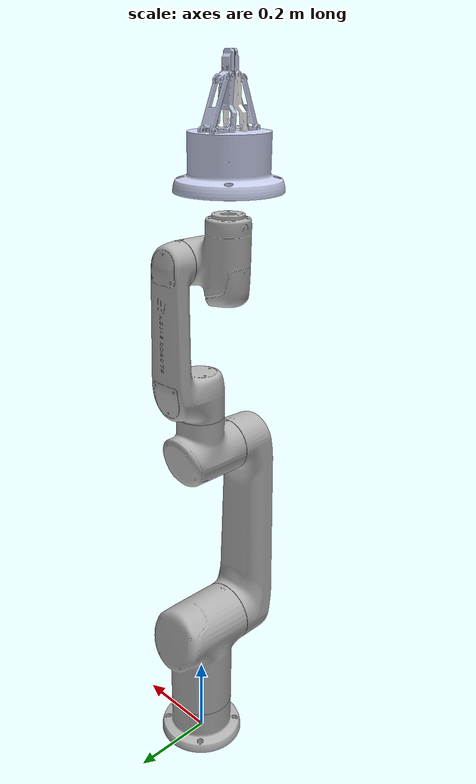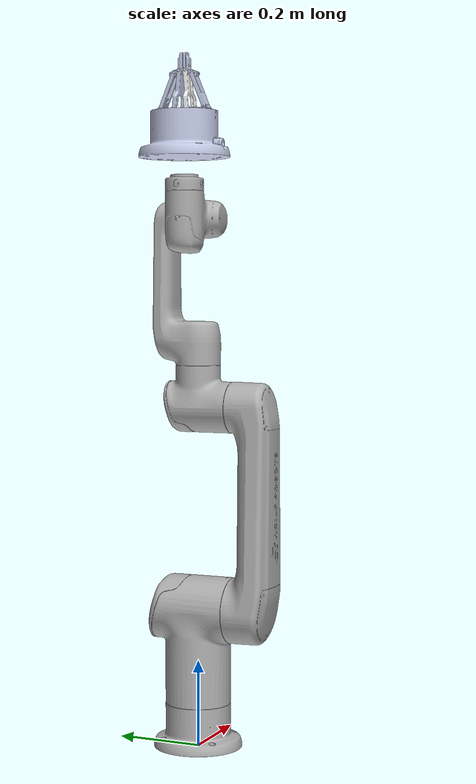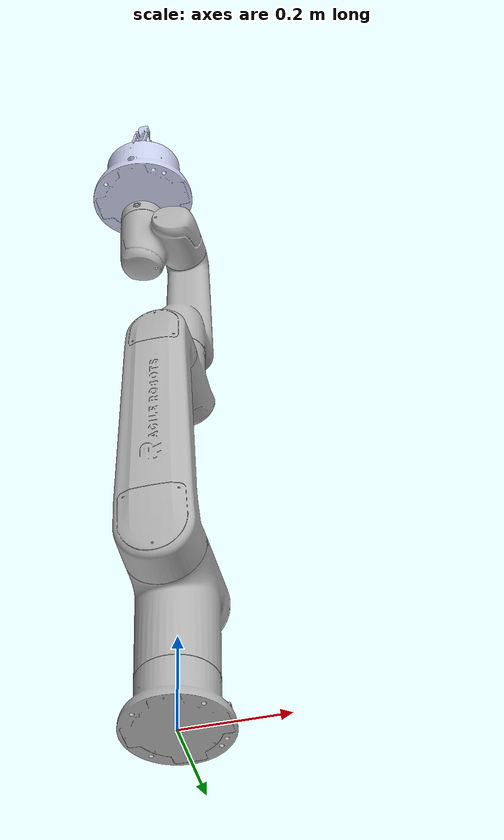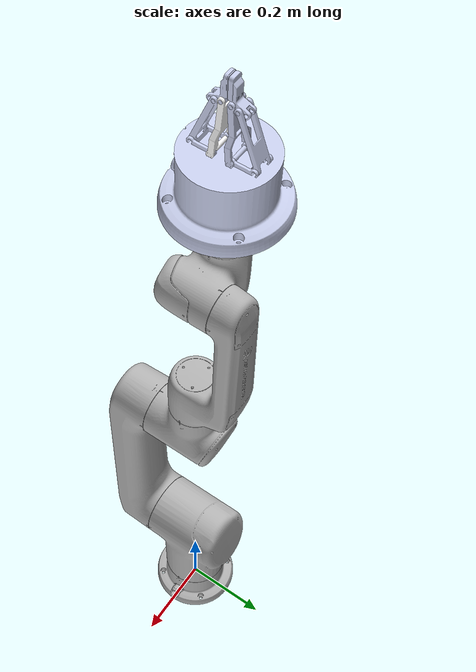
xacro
<?xml version="1.0"?>
<robot xmlns:xacro="http://ros.org/wiki/xacro" name="thor7v3" >

  <xacro:arg name="transmission_hw_interface" default="hardware_interface/PositionJointInterface"/>

  <!-- common stuff -->
  <xacro:include filename="$(find thor7v3_description)/urdf/common.gazebo.xacro" />

  <!-- thor7v3 -->
  <xacro:include filename="$(find thor7v3_description)/urdf/thor7v3.urdf.xacro" />

  <!-- arm -->
  <xacro:thor7v3_robot prefix="" transmission_hw_interface="$(arg transmission_hw_interface)" />

  <xacro:include filename="$(find dh_robotics_ag145_description)/urdf/dh_robotics_ag145_gripper.urdf.xacro" />

  <link name="ft_sensor_mount_link">

    <!-- Main F/T body + mounting structure -->
    <collision name="ft_sensor_body_collision">
      <origin
        xyz="0.000000 -0.003000 0.018150"
        rpy="0 0 0" />
      <geometry>
        <box size="0.085000 0.091000 0.043100" />
      </geometry>
    </collision>

    <!-- Connector / cable, proximal section -->
    <collision name="ft_sensor_cable_near_collision">
      <origin
        xyz="-0.058000 -0.016250 0.015500"
        rpy="0 0 0" />
      <geometry>
        <box size="0.026000 0.028500 0.018000" />
      </geometry>
    </collision>

    <!-- Connector / cable, middle section -->
    <collision name="ft_sensor_cable_mid_collision">
      <origin
        xyz="-0.082500 0.006000 0.016350"
        rpy="0 0 0" />
      <geometry>
        <box size="0.027000 0.048000 0.019700" />
      </geometry>
    </collision>

    <!-- Connector / cable, distal section -->
    <collision name="ft_sensor_cable_far_collision">
      <origin
        xyz="-0.105000 0.009250 0.017750"
        rpy="0 0 0" />
      <geometry>
        <box size="0.022000 0.054500 0.014500" />
      </geometry>
    </collision>

  </link>

  <joint name="ft_sensor_mount_joint" type="fixed">
    <parent link="link6" />
    <child link="ft_sensor_mount_link" />
    <origin xyz="0.0 0.0 0.0" rpy="0.0 0.0 0.0" />
  </joint>

  <xacro:property
    name="gripper_mount_xyz"
    value="0.0 0.0 0.0387" />

  <!--
       Keep the existing rotational mounting assumption for now.
       Z-axis rotation still requires final CAD/frame confirmation
       before first MoveIt Execute.
  -->
  <xacro:property
    name="gripper_mount_rpy"
    value="0.0 0.0 -1.5707963267948966" />

  <xacro:dh_robotics_ag145_gripper
    prefix="ag145_"
    parent="ft_sensor_mount_link">
    <origin xyz="${gripper_mount_xyz}" rpy="${gripper_mount_rpy}" />
  </xacro:dh_robotics_ag145_gripper>

  <xacro:property name="tool0_xyz" value="0.0 0.0 0.20" />
  <xacro:property name="tool0_rpy" value="0.0 0.0 0.0" />

  <link name="tool0" />
  <joint name="tool0_joint" type="fixed">
    <parent link="ag145_gripper_base_link" />
    <child link="tool0" />
    <origin xyz="${tool0_xyz}" rpy="${tool0_rpy}" />
  </joint>

  <link name="world" />

  <joint name="world_joint" type="fixed">
    <parent link="world" />
    <child link = "base_link" />
    <origin xyz="0.0 0.0 0.0" rpy="0.0 0.0 0.0" />
  </joint>

</robot>

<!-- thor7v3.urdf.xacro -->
<robot xmlns:xacro="http://ros.org/wiki/xacro">

  <xacro:include filename="$(find thor7v3_description)/urdf/thor7v3.transmission.xacro" />
  <xacro:include filename="$(find thor7v3_description)/urdf/thor7v3.gazebo.xacro" />

  <xacro:macro name="dh_to_origin" params="a d alpha theta">
    <xacro:property name="r00" scope="parent" value="${cos(theta)}" />
    <xacro:property name="r10" scope="parent" value="${sin(theta)*cos(alpha)}" />
    <xacro:property name="r11" scope="parent" value="${cos(theta)*cos(alpha)}" />
    <xacro:property name="r12" scope="parent" value="${-sin(alpha)}" />
    <xacro:property name="r20" scope="parent" value="${sin(theta)*sin(alpha)}" />
    <xacro:property name="r21" scope="parent" value="${cos(theta)*sin(alpha)}" />
    <xacro:property name="r22" scope="parent" value="${cos(alpha)}" />
    <xacro:property name="sum" scope="parent" value="${sqrt(r00*r00 + r10*r10)}" />
    <xacro:if value="${sum > 1e-15}">
      <xacro:property name="ry" scope="parent" value="0.0" />
      <xacro:property name="pitch0" scope="parent" value="${atan2(-r20,sum)}" />
      <xacro:property name="pitch1" scope="parent" value="${atan2(-r20,-sum)}" />
      <xacro:if value="${fabs(pitch0 - ry) > fabs(pitch1 - ry)}">
        <origin rpy="${atan2(-r21,-r22)} ${pitch1} ${atan2(-r10,-r00)}" xyz="${a} ${-sin(alpha)*d} ${cos(alpha)*d}" />
      </xacro:if>
      <xacro:unless value="${fabs(pitch0 - ry) > fabs(pitch1 - ry)}">
        <origin rpy="${atan2(r21,r22)} ${pitch0} ${atan2(r10,r00)}" xyz="${a} ${-sin(alpha)*d} ${cos(alpha)*d}" />
      </xacro:unless>
    </xacro:if>
    <xacro:unless value="${sum > 1e-15}">
      <origin rpy="${atan2(-r12,r11)} ${atan2(-r20,sum)} 0.0" xyz="${a} ${-sin(alpha)*d} ${cos(alpha)*d}" />
    </xacro:unless>
  </xacro:macro>

  <xacro:macro name="thor7v3_robot" params="prefix  transmission_hw_interface     safety_limits:=false safety_pos_margin:=0.15     safety_k_position:=20 safety_k_velocity:=0.0">
    <xacro:property name="a" value="${[0.0,0.0,0.47,0.0,0.0,-0.078,0.0]}" />
    <xacro:property name="alpha" value="${[0.0,-1.5707963267949,0.0,1.5707963267949,-1.5707963267949,1.5707963267949,0.0]}" />
    <xacro:property name="d" value="${[0.326,0.0,0.0,0.43,0.0,0.0973,0.0]}" />
    <xacro:property name="theta" value="${[0.0,-1.5707963267949,1.5707963267949,0.0,0.0,0.0,0.0]}" />
    <xacro:property name="joint_limitU" value="${[6.2831853071,3.1241393611,2.879793266,6.2831853071,6.2831853071,6.2831853071,0.0]}" />
    <xacro:property name="joint_limitL" value="${[-6.2831853071,-3.1241393611,-2.879793266,-6.2831853071,-6.2831853071,-6.2831853071,0.0]}" />
    <xacro:property name="joint_vel" value="${[4.1887902048,4.1887902048,4.36332313,5.672320069,7.67944870878,7.67944870878,0.0]}" />
    <xacro:property name="joint_effort" value="${[411.0,411.0,194.0,91.0,53.0,53.0,0.0]}" />
    <xacro:property name="link1_rbi" value="${[10.831271,0.000071,-0.019640,-0.085042,0.132522,-4.3e-05,-6.5e-05,0.126405,0.01814,0.038418]}" />
    <xacro:property name="link2_rbi" value="${[6.300035,0.212264,-0.000006,-0.112699,0.02063,5.5e-05,-0.005449,0.279344,-1e-06,0.277943]}" />
    <xacro:property name="link3_rbi" value="${[4.040193,-0.000002,-0.051825,-0.020304,0.024072,-2e-06,9e-06,0.009224,0.004387,0.022028]}" />
    <xacro:property name="link4_rbi" value="${[2.498702,0.000012,0.040386,-0.168450,0.04174,1e-06,-2e-06,0.039726,-0.005811,0.005871]}" />
    <xacro:property name="link5_rbi" value="${[2.321261,-0.042950,-0.006063,0.009150,0.003488,-0.000515,-0.000933,0.006255,-0.000123,0.00622]}" />
    <xacro:property name="link6_rbi" value="${[0.656528,-0.000595,0.000101,-0.039045,0.000769,-0.0,6e-06,0.000783,-1e-06,0.000611]}" />
    <xacro:property name="link7_rbi" value="${[0.0,0.0,0.0,0.0,0.0,0.0,0.0,0.0,0.0,0.0]}" />
    <xacro:property name="joint_damp" value="0.0" />
    <xacro:property name="joint_frict" value="0.1" />

    <link name="base_link">
      <inertial>
        <origin rpy="0 0 0" xyz="0.0 0.0 0.0" />
        <mass value="5.0" />
        <inertia ixx="0.0" ixy="0.0" ixz="0.0" iyy="0.0" iyz="0.0" izz="0.0" />
      </inertial>
      <visual>
        <origin rpy="0 0 0" xyz="0 0 0" />
        <geometry>
          <mesh filename="package://thor7v3_description/meshes/base_link.STL" />
        </geometry>
        <material name="LightGrey">
          <color rgba="0.7 0.7 0.7 1" />
        </material>
      </visual>
      <collision>
        <origin rpy="0 0 0" xyz="0 0 0" />
        <geometry>
          <mesh filename="package://thor7v3_description/meshes/base_link.STL" />
        </geometry>
      </collision>
    </link>

    <xacro:macro name="add_joint" params="num a alpha d theta limitU limitL vel effort">
      <xacro:if value="${num == 1}">
        <xacro:property name="parent_link" value="base_link" />
      </xacro:if>
      <xacro:unless value="${num == 1}">
        <xacro:property name="parent_link" value="link${num-1}" />
      </xacro:unless>
      <joint name="joint${num}" type="revolute">
        <xacro:dh_to_origin a="${a}" alpha="${alpha}" d="${d}" theta="${theta}" />
        <parent link="${parent_link}" />
        <child link="link${num}" />
        <axis xyz="0 0 1" />
        <limit effort="${effort}" lower="${limitL}" upper="${limitU}" velocity="${vel}" />
        <xacro:if value="${safety_limits}">
          <safety_controller k_position="${safety_k_position}" k_velocity="${safety_k_velocity}" soft_lower_limit="${limitL + safety_pos_margin}" soft_upper_limit="${limitU - safety_pos_margin}" />
        </xacro:if>
        <dynamics damping="${joint_damp}" friction="${joint_frict}" />
      </joint>
    </xacro:macro>
    <xacro:add_joint a="${a[0]}" alpha="${alpha[0]}" d="${d[0]}" effort="${joint_effort[0]}" limitL="${joint_limitL[0]}" limitU="${joint_limitU[0]}" num="1" theta="${theta[0]}" vel="${joint_vel[0]}" />
    <xacro:add_joint a="${a[1]}" alpha="${alpha[1]}" d="${d[1]}" effort="${joint_effort[1]}" limitL="${joint_limitL[1]}" limitU="${joint_limitU[1]}" num="2" theta="${theta[1]}" vel="${joint_vel[1]}" />
    <xacro:add_joint a="${a[2]}" alpha="${alpha[2]}" d="${d[2]}" effort="${joint_effort[2]}" limitL="${joint_limitL[2]}" limitU="${joint_limitU[2]}" num="3" theta="${theta[2]}" vel="${joint_vel[2]}" />
    <xacro:add_joint a="${a[3]}" alpha="${alpha[3]}" d="${d[3]}" effort="${joint_effort[3]}" limitL="${joint_limitL[3]}" limitU="${joint_limitU[3]}" num="4" theta="${theta[3]}" vel="${joint_vel[3]}" />
    <xacro:add_joint a="${a[4]}" alpha="${alpha[4]}" d="${d[4]}" effort="${joint_effort[4]}" limitL="${joint_limitL[4]}" limitU="${joint_limitU[4]}" num="5" theta="${theta[4]}" vel="${joint_vel[4]}" />
    <xacro:add_joint a="${a[5]}" alpha="${alpha[5]}" d="${d[5]}" effort="${joint_effort[5]}" limitL="${joint_limitL[5]}" limitU="${joint_limitU[5]}" num="6" theta="${theta[5]}" vel="${joint_vel[5]}" />

    <xacro:macro name="add_link" params="num mass x y z ixx ixy ixz iyy iyz izz">
      <link name="link${num}">
        <inertial>
          <origin rpy="0 0 0" xyz="${x} ${y} ${z}" />
          <mass value="${mass}" />
          <inertia ixx="${ixx}" ixy="${ixy}" ixz="${ixz}" iyy="${iyy}" iyz="${iyz}" izz="${izz}" />
        </inertial>
        <visual>
          <origin rpy="0 0 0" xyz="0 0 0" />
          <geometry>
            <mesh filename="package://thor7v3_description/meshes/link${num}.STL" />
          </geometry>
          <material name="LightGrey">
            <color rgba="0.7 0.7 0.7 1" />
          </material>
        </visual>
        <collision>
          <origin rpy="0 0 0" xyz="0 0 0" />
          <geometry>
            <mesh filename="package://thor7v3_description/meshes/link${num}.STL" />
          </geometry>
        </collision>
      </link>
    </xacro:macro>
    <xacro:add_link ixx="${link1_rbi[4]}" ixy="${link1_rbi[5]}" ixz="${link1_rbi[6]}" iyy="${link1_rbi[7]}" iyz="${link1_rbi[8]}" izz="${link1_rbi[9]}" mass="${link1_rbi[0]}" num="1" x="${link1_rbi[1]}" y="${link1_rbi[2]}" z="${link1_rbi[3]}" />
    <xacro:add_link ixx="${link2_rbi[4]}" ixy="${link2_rbi[5]}" ixz="${link2_rbi[6]}" iyy="${link2_rbi[7]}" iyz="${link2_rbi[8]}" izz="${link2_rbi[9]}" mass="${link2_rbi[0]}" num="2" x="${link2_rbi[1]}" y="${link2_rbi[2]}" z="${link2_rbi[3]}" />
    <xacro:add_link ixx="${link3_rbi[4]}" ixy="${link3_rbi[5]}" ixz="${link3_rbi[6]}" iyy="${link3_rbi[7]}" iyz="${link3_rbi[8]}" izz="${link3_rbi[9]}" mass="${link3_rbi[0]}" num="3" x="${link3_rbi[1]}" y="${link3_rbi[2]}" z="${link3_rbi[3]}" />
    <xacro:add_link ixx="${link4_rbi[4]}" ixy="${link4_rbi[5]}" ixz="${link4_rbi[6]}" iyy="${link4_rbi[7]}" iyz="${link4_rbi[8]}" izz="${link4_rbi[9]}" mass="${link4_rbi[0]}" num="4" x="${link4_rbi[1]}" y="${link4_rbi[2]}" z="${link4_rbi[3]}" />
    <xacro:add_link ixx="${link5_rbi[4]}" ixy="${link5_rbi[5]}" ixz="${link5_rbi[6]}" iyy="${link5_rbi[7]}" iyz="${link5_rbi[8]}" izz="${link5_rbi[9]}" mass="${link5_rbi[0]}" num="5" x="${link5_rbi[1]}" y="${link5_rbi[2]}" z="${link5_rbi[3]}" />
    <xacro:add_link ixx="${link6_rbi[4]}" ixy="${link6_rbi[5]}" ixz="${link6_rbi[6]}" iyy="${link6_rbi[7]}" iyz="${link6_rbi[8]}" izz="${link6_rbi[9]}" mass="${link6_rbi[0]}" num="6" x="${link6_rbi[1]}" y="${link6_rbi[2]}" z="${link6_rbi[3]}" />

    <xacro:thor7v3_arm_transmission hw_interface="${transmission_hw_interface}" prefix="" />
    <xacro:thor7v3_arm_gazebo prefix="" />

  </xacro:macro>
</robot>

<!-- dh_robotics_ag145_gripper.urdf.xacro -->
<robot name="dh_robotics_ag145_gripper" xmlns:xacro="http://ros.org/wiki/xacro">

    <xacro:macro name="dh_robotics_ag145_gripper" params="prefix parent *origin">

        <joint name="${prefix}gripper_base_joint" type="fixed">
            <parent link="${parent}"/>
            <child link="${prefix}gripper_base_link"/>
            <xacro:insert_block name="origin"/>
        </joint>

        <link name="${prefix}gripper_base_link">
            <visual>
                <geometry>
                    <mesh filename="package://dh_robotics_ag145_description/meshes/visual/base_link.STL"  />
                </geometry>
                <material name="${prefix}visual_material_0">
                    <color rgba="0.792156862745098 0.819607843137255 0.933333333333333 1" />
                </material>
            </visual>
            <collision>
                <geometry>
                    <mesh filename="package://dh_robotics_ag145_description/meshes/visual/base_link.STL"  />
                </geometry>
            </collision>
            <inertial>
                <mass value="0.0244063265095657" />
                <origin xyz="4.22096179276271E-09 -8.66337897962713E-05 0.00351545641909857" />
                <inertia ixx="5.17090412144922E-06"
                         ixy="2.1574281704417E-13"
                         ixz="-1.62385477492139E-13"
                         iyy="1.55299243331649E-05"
                         iyz="-3.38892310365514E-09"
                         izz="2.02963394517234E-05"  />
            </inertial>
        </link>

        <gazebo reference="${prefix}gripper_base_link">
            <implicitSpringDamper>1</implicitSpringDamper>
            <mu1>100000</mu1>
            <mu2>100000</mu2>
            <kp>100000000.0</kp>
            <kd>1.0</kd>
        </gazebo>

        <joint name="${prefix}gripper_finger1_joint" type="revolute">
            <parent link="${prefix}gripper_base_link"/>
            <child link="${prefix}gripper_finger1_knuckle_link"/>
            <axis xyz="0 -1 0"/>
            <origin rpy="0.0 0.0 ${pi}" xyz="-0.016 0 0.10586"/>
            <limit lower="-0.65" upper="0.0" velocity="100.0" effort="1000"/>
        </joint>

        <joint name="${prefix}gripper_finger2_joint" type="revolute">
            <parent link="${prefix}gripper_base_link"/>
            <child link="${prefix}gripper_finger2_knuckle_link"/>
            <axis xyz="0 -1 0"/>
            <origin rpy="0.0 0.0 0.0" xyz="0.016  0 0.10586 "/>
            <limit lower="-3.14" upper="3.14" velocity="100.0" effort="1000"/>
            <mimic joint="${prefix}gripper_finger1_joint"/>
        </joint>

        <link name="${prefix}gripper_finger1_knuckle_link">
            <visual>
                <geometry>
                    <mesh filename="package://dh_robotics_ag145_description/meshes/visual/crank_Link.STL"  />
                </geometry>
                <material name="${prefix}visual_material_1">
                    <color rgba="0.79216 0.81961 0.93333 1" />
                </material>
            </visual>
            <collision>
                <geometry>
                    <mesh filename="package://dh_robotics_ag145_description/meshes/visual/crank_Link.STL"  />
                </geometry>
            </collision>
            <inertial>
                <mass value="0.0039541" />
                <origin xyz="0.019413 1.0484E-09 -0.0013793" />
                <inertia    ixx="1.1534E-06"
                            ixy="-3.3307E-14"
                            ixz="5.4175E-09"
                            iyy="6.8389E-07"
                            iyz="7.7878E-15"
                            izz="1.7667E-06" />
            </inertial>
        </link>

        <gazebo reference="${prefix}gripper_finger1_knuckle_link">
            <implicitSpringDamper>1</implicitSpringDamper>
            <mu1>100000</mu1>
            <mu2>100000</mu2>
            <kp>100000000.0</kp>
            <kd>1.0</kd>
        </gazebo>

        <link name="${prefix}gripper_finger2_knuckle_link">
            <visual>
                <geometry>
                    <mesh filename="package://dh_robotics_ag145_description/meshes/visual/crank_Link.STL"  />
                </geometry>
                <material name="${prefix}visual_material_2">
                    <color rgba="0.79216 0.81961 0.93333 1" />
                </material>
            </visual>
            <collision>
                <geometry>
                    <mesh filename="package://dh_robotics_ag145_description/meshes/visual/crank_Link.STL"  />
                </geometry>
            </collision>
            <inertial>
                <mass value="0.0039541" />
                <origin xyz="0.019413 0.00025 -0.0013793" />
                <inertia
                    ixx="1.1534E-06"
                    ixy="-3.3307E-14"
                    ixz="5.4175E-09"
                    iyy="6.8389E-07"
                    iyz="7.7878E-15"
                    izz="1.7667E-06" />
            </inertial>
        </link>

        <gazebo reference="${prefix}gripper_finger2_knuckle_link">
            <implicitSpringDamper>1</implicitSpringDamper>
            <mu1>100000</mu1>
            <mu2>100000</mu2>
            <kp>100000000.0</kp>
            <kd>1.0</kd>
        </gazebo>

        <joint name="${prefix}gripper_finger1_finger_joint" type="continuous">
            <parent link="${prefix}gripper_finger1_knuckle_link"/>
            <child link="${prefix}gripper_finger1_finger_link"/>
            <axis xyz="0 -1 0"/>
            <origin xyz="0.036999 0 -0.00019698" rpy="0 0 0" />
            <limit lower="-3.14" upper="3.14" velocity="100.0" effort="105"/>
            <mimic joint="${prefix}gripper_finger1_joint" multiplier="0.5" offset="0"/>
        </joint>

        <joint name="${prefix}gripper_finger2_finger_joint" type="continuous">
            <parent link="${prefix}gripper_finger2_knuckle_link"/>
            <child link="${prefix}gripper_finger2_finger_link"/>
            <axis xyz="0 -1 0"/>
            <origin xyz="0.036999 0 -0.00019698" rpy="0 0 0" />
            <limit lower="-3.14" upper="3.14" velocity="100.0" effort="105"/>
            <mimic joint="${prefix}gripper_finger1_joint" multiplier="0.5" offset="0"/>
        </joint>

        <link name="${prefix}gripper_finger1_finger_link">
            <visual>
                <geometry>
                    <mesh filename="package://dh_robotics_ag145_description/meshes/visual/rod_Link.STL"  />
                </geometry>
                <material name="${prefix}visual_material_3">
                    <color rgba="0.79216 0.81961 0.93333 1" />
                </material>
            </visual>
            <collision>
                <geometry>
                    <mesh filename="package://dh_robotics_ag145_description/meshes/visual/rod_Link.STL"  />
                </geometry>
            </collision>
            <inertial>
                <mass value="0.01141" />
                <origin xyz="-0.012522 -9.1789E-09 0.034743" />
                <inertia
                    ixx="7.7273E-06"
                    ixy="5.2238E-14"
                    ixz="2.7021E-06"
                    iyy="7.7164E-06"
                    iyz="2.4255E-13"
                    izz="2.4386E-06" />
            </inertial>
        </link>

        <gazebo reference="${prefix}gripper_finger1_finger_link">
            <implicitSpringDamper>1</implicitSpringDamper>
            <mu1>100000</mu1>
            <mu2>100000</mu2>
            <kp>100000000.0</kp>
            <kd>1.0</kd>
        </gazebo>

        <link name="${prefix}gripper_finger2_finger_link">
            <visual>
                <geometry>
                    <mesh filename="package://dh_robotics_ag145_description/meshes/visual/rod_Link.STL"  />
                </geometry>
                <material name="${prefix}visual_material_4">
                    <color rgba="0.79216 0.81961 0.93333 1" />
                </material>
            </visual>
            <collision>
                <geometry>
                    <mesh filename="package://dh_robotics_ag145_description/meshes/visual/rod_Link.STL"  />
                </geometry>
            </collision>
            <inertial>
                <mass value="0.01141" />
                <origin xyz="-0.012522 -0.00025001 0.034743" />
                <inertia
                    ixx="7.7273E-06"
                    ixy="5.2238E-14"
                    ixz="2.7021E-06"
                    iyy="7.7164E-06"
                    iyz="2.4255E-13"
                    izz="2.4386E-06" />
            </inertial>
        </link>

        <gazebo reference="${prefix}gripper_finger2_finger_link">
            <implicitSpringDamper>1</implicitSpringDamper>
            <mu1>100000</mu1>
            <mu2>100000</mu2>
            <kp>100000000.0</kp>
            <kd>1.0</kd>
        </gazebo>

        <joint name="${prefix}gripper_finger1_inner_knuckle_joint" type="continuous">
            <parent link="${prefix}gripper_base_link"/>
            <child link="${prefix}gripper_finger1_inner_knuckle_link"/>
            <axis xyz="0 -1 0"/>
            <origin rpy="0.0 0.0 ${pi}" xyz="-0.016 0 0.10586"/>
            <limit lower="-3.14" upper="3.14" velocity="100.0" effort="105"/>
            <mimic joint="${prefix}gripper_finger1_joint" multiplier="1.49"  offset="0"/>
        </joint>

        <joint name="${prefix}gripper_finger2_inner_knuckle_joint" type="continuous">
            <parent link="${prefix}gripper_base_link"/>
            <child link="${prefix}gripper_finger2_inner_knuckle_link"/>
            <axis xyz="0 -1 0"/>
            <origin rpy="0.0 0.0 0.0" xyz="0.016 0 0.10586"/>
            <limit lower="-3.14" upper="3.14" velocity="100.0" effort="105"/>
            <mimic joint="${prefix}gripper_finger1_joint" multiplier="1.49" offset="0"/>
        </joint>

        <link name="${prefix}gripper_finger1_inner_knuckle_link">
            <visual>
                <geometry>
                    <mesh filename="package://dh_robotics_ag145_description/meshes/visual/proximal_phalanx_Link.STL"  />
                </geometry>
                <material name="${prefix}visual_material_5">
                    <color rgba="0.79216 0.81961 0.93333 1" />
                </material>
            </visual>
            <collision>
                <geometry>
                    <mesh filename="package://dh_robotics_ag145_description/meshes/visual/proximal_phalanx_Link.STL"  />
                </geometry>
            </collision>
            <inertial>
                <mass value="0.017156" />
                <origin xyz="-0.0051218 -8.3333E-10 0.038185" />
                <inertia
                    ixx="1.5431E-05"
                    ixy="3.7731E-14"
                    ixz="1.2687E-06"
                    iyy="1.2149E-05"
                    iyz="-3.4837E-13"
                    izz="3.7944E-06" />
            </inertial>
        </link>

        <gazebo reference="${prefix}gripper_finger1_inner_knuckle_link">
            <implicitSpringDamper>1</implicitSpringDamper>
            <mu1>100000</mu1>
            <mu2>100000</mu2>
            <kp>100000000.0</kp>
            <kd>1.0</kd>
        </gazebo>

        <link name="${prefix}gripper_finger2_inner_knuckle_link">
            <visual>
                <geometry>
                    <mesh filename="package://dh_robotics_ag145_description/meshes/visual/proximal_phalanx_Link.STL"  />
                </geometry>
                <material name="${prefix}visual_material_6">
                    <color rgba="1 1 1 1" />
                </material>
            </visual>
            <collision>
                <geometry>
                    <mesh filename="package://dh_robotics_ag145_description/meshes/visual/proximal_phalanx_Link.STL"  />
                </geometry>
            </collision>
            <inertial>
                <mass value="0.017156" />
                <origin xyz="-0.0051218 -8.3333E-10 0.038185" />
                <inertia
                    ixx="1.5431E-05"
                    ixy="3.7731E-14"
                    ixz="1.2687E-06"
                    iyy="1.2149E-05"
                    iyz="-3.4837E-13"
                    izz="3.7944E-06" />
            </inertial>
        </link>

        <gazebo reference="${prefix}gripper_finger2_inner_knuckle_link">
            <implicitSpringDamper>1</implicitSpringDamper>
            <mu1>100000</mu1>
            <mu2>100000</mu2>
            <kp>100000000.0</kp>
            <kd>1.0</kd>
        </gazebo>

        <joint name="${prefix}gripper_finger1_finger_tip_joint" type="continuous">
            <parent link="${prefix}gripper_finger1_inner_knuckle_link"/>
            <child link="${prefix}gripper_finger1_finger_tip_link"/>
            <axis xyz="0 1 0"/>
            <origin xyz="-0.0081054 0 0.086119 " rpy="0.0 0.0 0.0"/>
            <limit lower="-3.14" upper="3.14" velocity="100.0" effort="0.1"/>
            <mimic joint="${prefix}gripper_finger1_joint" multiplier="1.49"/>
        </joint>

        <joint name="${prefix}gripper_finger2_finger_tip_joint" type="continuous">
            <parent link="${prefix}gripper_finger2_inner_knuckle_link"/>
            <child link="${prefix}gripper_finger2_finger_tip_link"/>
            <axis xyz="0 1 0"/>
            <origin rpy="0.0 0.0 0.0" xyz="-0.0081054 0 0.086119  "/>
            <limit lower="-3.14" upper="3.14" velocity="100.0" effort="0.1"/>
            <mimic joint="${prefix}gripper_finger1_joint" multiplier="1.49"/>
        </joint>

        <link name="${prefix}gripper_finger1_finger_tip_link">
            <visual>
                <geometry>
                    <mesh filename="package://dh_robotics_ag145_description/meshes/visual/distal_phalanx_Link.STL"  />
                </geometry>
                <material name="${prefix}visual_material_7">
                    <color rgba="0.79216 0.81961 0.93333 1" />
                </material>
            </visual>
            <collision>
                <geometry>
                    <mesh filename="package://dh_robotics_ag145_description/meshes/visual/distal_phalanx_Link.STL"  />
                </geometry>
            </collision>
            <inertial>
                <mass value="0.012397" />
                <origin xyz="0.0019731 -1.4867E-09 0.010631" />
                <inertia
                    ixx="1.0948E-06"
                    ixy="4.5713E-14"
                    ixz="1.3947E-07"
                    iyy="1.0269E-06"
                    iyz="-5.5222E-15"
                    izz="8.431E-07" />
            </inertial>
        </link>

        <gazebo reference="${prefix}gripper_finger1_finger_tip_link">
            <implicitSpringDamper>1</implicitSpringDamper>
            <mu1>100000</mu1>
            <mu2>100000</mu2>
            <kp>100000000.0</kp>
            <kd>1.0</kd>
        </gazebo>

        <link name="${prefix}gripper_finger2_finger_tip_link">
            <visual>
                <geometry>
                    <mesh filename="package://dh_robotics_ag145_description/meshes/visual/distal_phalanx_Link.STL" />
                </geometry>
                <material name="${prefix}visual_material_8">
                    <color rgba="0.79216 0.81961 0.93333 1" />
                </material>
            </visual>
            <collision>
                <geometry>
                    <mesh filename="package://dh_robotics_ag145_description/meshes/visual/distal_phalanx_Link.STL" />
                </geometry>
            </collision>
            <inertial>
                <mass value="0.012397" />
                <origin xyz="0.0019731 3.1569E-10 0.010631" />
                <inertia
                    ixx="1.0948E-06"
                    ixy="-9.4676E-15"
                    ixz="1.3947E-07"
                    iyy="1.0269E-06"
                    iyz="1.771E-14"
                    izz="8.431E-07" />
            </inertial>
        </link>

        <gazebo reference="${prefix}gripper_finger2_finger_tip_link">
            <implicitSpringDamper>1</implicitSpringDamper>
            <mu1>100000</mu1>
            <mu2>100000</mu2>
            <kp>100000000.0</kp>
            <kd>1.0</kd>
        </gazebo>

    </xacro:macro>
</robot>
